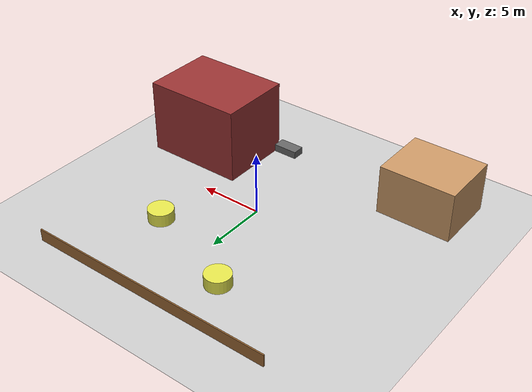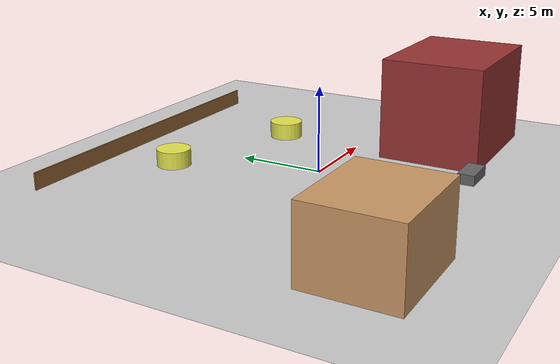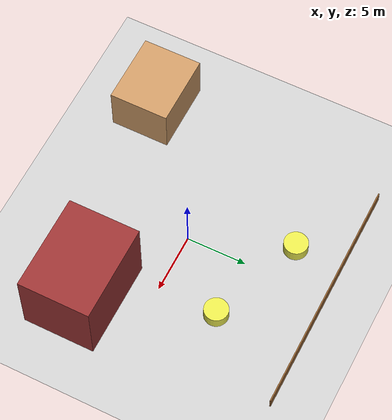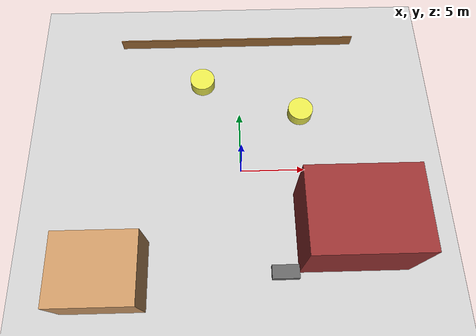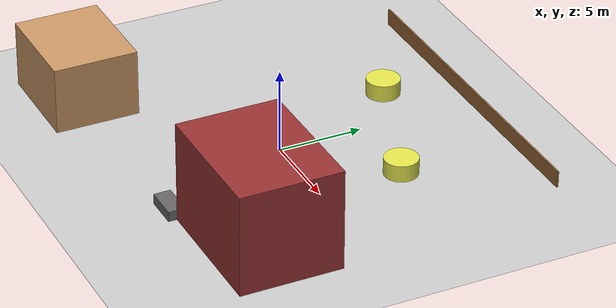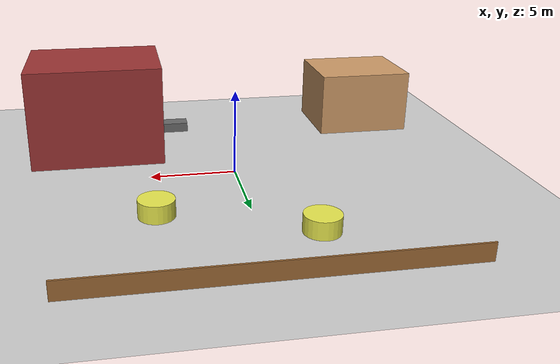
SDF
<?xml version="1.0" ?>
<sdf version="1.6">
  <world name="farm">
    <include>
      <uri>model://sun</uri>
    </include>
    <include>
      <uri>model://ground_plane</uri>
    </include>

    <!-- Farmhouse -->
    <model name="farmhouse">
      <static>true</static>
      <pose>-10 -8 2 0 0 0</pose>
      <link name="link">
        <collision name="collision">
          <geometry>
            <box>
              <size>6 5 4</size>
            </box>
          </geometry>
        </collision>
        <visual name="visual">
          <geometry>
            <box>
              <size>6 5 4</size>
            </box>
          </geometry>
          <material>
            <ambient>0.8 0.6 0.4 1</ambient>
          </material>
        </visual>
      </link>
    </model>

    <!-- Barn -->
    <model name="barn">
      <static>true</static>
      <pose>8 -5 3 0 0 0</pose>
      <link name="link">
        <collision name="collision">
          <geometry>
            <box>
              <size>8 6 6</size>
            </box>
          </geometry>
        </collision>
        <visual name="visual">
          <geometry>
            <box>
              <size>8 6 6</size>
            </box>
          </geometry>
          <material>
            <ambient>0.6 0.2 0.2 1</ambient>
          </material>
        </visual>
      </link>
    </model>

    <!-- Hay bales -->
    <model name="hay_bale1">
      <static>true</static>
      <pose>5 5 0.5 0 0 0</pose>
      <link name="link">
        <collision name="collision">
          <geometry>
            <cylinder>
              <radius>1</radius>
              <length>1</length>
            </cylinder>
          </geometry>
        </collision>
        <visual name="visual">
          <geometry>
            <cylinder>
              <radius>1</radius>
              <length>1</length>
            </cylinder>
          </geometry>
          <material>
            <ambient>0.9 0.9 0.3 1</ambient>
          </material>
        </visual>
      </link>
    </model>

    <model name="hay_bale2">
      <static>true</static>
      <pose>-3 8 0.5 0 0 0</pose>
      <link name="link">
        <collision name="collision">
          <geometry>
            <cylinder>
              <radius>1</radius>
              <length>1</length>
            </cylinder>
          </geometry>
        </collision>
        <visual name="visual">
          <geometry>
            <cylinder>
              <radius>1</radius>
              <length>1</length>
            </cylinder>
          </geometry>
          <material>
            <ambient>0.9 0.9 0.3 1</ambient>
          </material>
        </visual>
      </link>
    </model>

    <!-- Farm fence -->
    <model name="fence1">
      <static>true</static>
      <pose>0 12 0.5 0 0 0</pose>
      <link name="link">
        <collision name="collision">
          <geometry>
            <box>
              <size>20 0.1 1</size>
            </box>
          </geometry>
        </collision>
        <visual name="visual">
          <geometry>
            <box>
              <size>20 0.1 1</size>
            </box>
          </geometry>
          <material>
            <ambient>0.6 0.4 0.2 1</ambient>
          </material>
        </visual>
      </link>
    </model>

    <!-- Water trough -->
    <model name="water_trough">
      <static>true</static>
      <pose>3 -8 0.3 0 0 0</pose>
      <link name="link">
        <collision name="collision">
          <geometry>
            <box>
              <size>2 1 0.6</size>
            </box>
          </geometry>
        </collision>
        <visual name="visual">
          <geometry>
            <box>
              <size>2 1 0.6</size>
            </box>
          </geometry>
          <material>
            <ambient>0.4 0.4 0.4 1</ambient>
          </material>
        </visual>
      </link>
    </model>

  </world>
</sdf>
